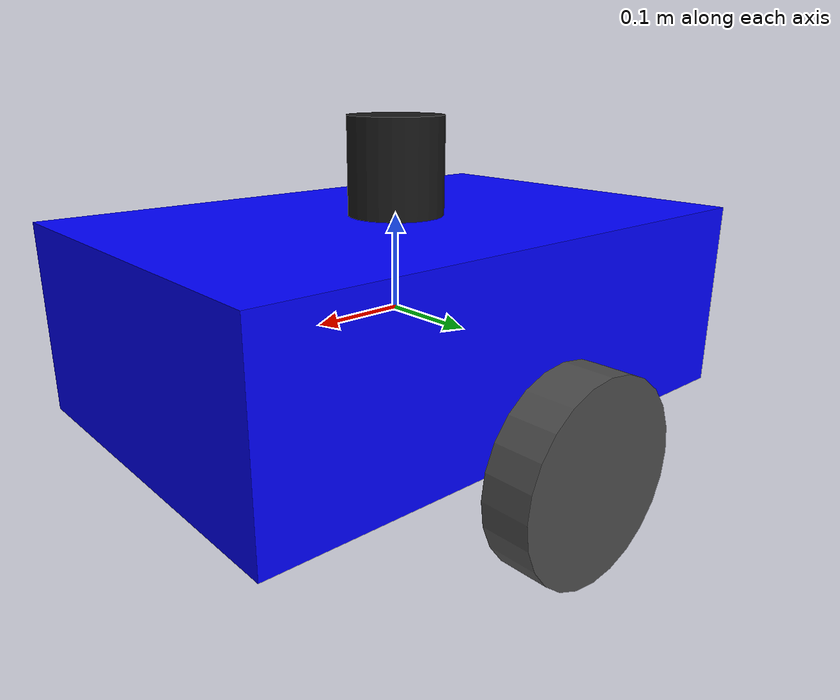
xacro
<?xml version="1.0"?>
<robot xmlns:xacro="http://www.ros.org/wiki/xacro" name="gazebo_robot">
  <!-- Robot with Gazebo-specific elements -->

  <link name="base_link">
    <visual>
      <origin xyz="0 0 0" rpy="0 0 0"/>
      <geometry>
        <box size="0.6 0.4 0.2"/>
      </geometry>
      <material name="blue">
        <color rgba="0 0 1 1"/>
      </material>
    </visual>
    <collision>
      <origin xyz="0 0 0" rpy="0 0 0"/>
      <geometry>
        <box size="0.6 0.4 0.2"/>
      </geometry>
    </collision>
    <inertial>
      <mass value="10.0"/>
      <inertia ixx="0.4" ixy="0" ixz="0" iyy="0.6" iyz="0" izz="0.8"/>
    </inertial>
  </link>

  <!-- Gazebo material properties -->
  <gazebo reference="base_link">
    <material>Gazebo/Blue</material>
    <mu1>0.8</mu1>
    <mu2>0.8</mu2>
    <kp>1000000.0</kp>
    <kd>1.0</kd>
  </gazebo>

  <!-- Lidar sensor -->
  <link name="lidar_link">
    <visual>
      <origin xyz="0 0 0" rpy="0 0 0"/>
      <geometry>
        <cylinder radius="0.05" length="0.1"/>
      </geometry>
      <material name="black">
        <color rgba="0.1 0.1 0.1 1"/>
      </material>
    </visual>
    <collision>
      <origin xyz="0 0 0" rpy="0 0 0"/>
      <geometry>
        <cylinder radius="0.05" length="0.1"/>
      </geometry>
    </collision>
    <inertial>
      <mass value="0.5"/>
      <inertia ixx="0.001" ixy="0" ixz="0" iyy="0.001" iyz="0" izz="0.001"/>
    </inertial>
  </link>

  <joint name="lidar_joint" type="fixed">
    <parent link="base_link"/>
    <child link="lidar_link"/>
    <origin xyz="0 0 0.15" rpy="0 0 0"/>
  </joint>

  <!-- Gazebo sensor plugin -->
  <gazebo reference="lidar_link">
    <sensor type="ray" name="lidar_sensor">
      <pose>0 0 0 0 0 0</pose>
      <visualize>true</visualize>
      <update_rate>40</update_rate>
      <ray>
        <scan>
          <horizontal>
            <samples>720</samples>
            <resolution>1</resolution>
            <min_angle>-1.570796</min_angle>
            <max_angle>1.570796</max_angle>
          </horizontal>
        </scan>
        <range>
          <min>0.10</min>
          <max>30.0</max>
          <resolution>0.01</resolution>
        </range>
        <noise>
          <type>gaussian</type>
          <mean>0.0</mean>
          <stddev>0.01</stddev>
        </noise>
      </ray>
      <plugin name="gazebo_ros_lidar_controller" filename="libgazebo_ros_ray_sensor.so">
        <topicName>/scan</topicName>
        <frameName>lidar_link</frameName>
      </plugin>
    </sensor>
  </gazebo>

  <!-- Wheel with motor -->
  <link name="wheel_link">
    <visual>
      <origin xyz="0 0 0" rpy="1.57079 0 0"/>
      <geometry>
        <cylinder radius="0.1" length="0.05"/>
      </geometry>
      <material name="dark_gray">
        <color rgba="0.3 0.3 0.3 1"/>
      </material>
    </visual>
    <collision>
      <origin xyz="0 0 0" rpy="1.57079 0 0"/>
      <geometry>
        <cylinder radius="0.1" length="0.05"/>
      </geometry>
    </collision>
    <inertial>
      <mass value="1.0"/>
      <inertia ixx="0.005" ixy="0" ixz="0" iyy="0.005" iyz="0" izz="0.005"/>
    </inertial>
  </link>

  <joint name="wheel_joint" type="continuous">
    <parent link="base_link"/>
    <child link="wheel_link"/>
    <origin xyz="0 0.25 -0.1" rpy="0 0 0"/>
    <axis xyz="0 1 0"/>
    <dynamics damping="0.1" friction="0.1"/>
  </joint>

  <!-- Gazebo transmission and actuator -->
  <transmission name="wheel_transmission">
    <type>transmission_interface/SimpleTransmission</type>
    <joint name="wheel_joint">
      <hardwareInterface>hardware_interface/VelocityJointInterface</hardwareInterface>
    </joint>
    <actuator name="wheel_motor">
      <hardwareInterface>hardware_interface/VelocityJointInterface</hardwareInterface>
      <mechanicalReduction>1</mechanicalReduction>
    </actuator>
  </transmission>

  <!-- Gazebo control plugin -->
  <gazebo>
    <plugin name="gazebo_ros_control" filename="libgazebo_ros_control.so">
      <robotNamespace>/</robotNamespace>
    </plugin>
  </gazebo>
</robot>
